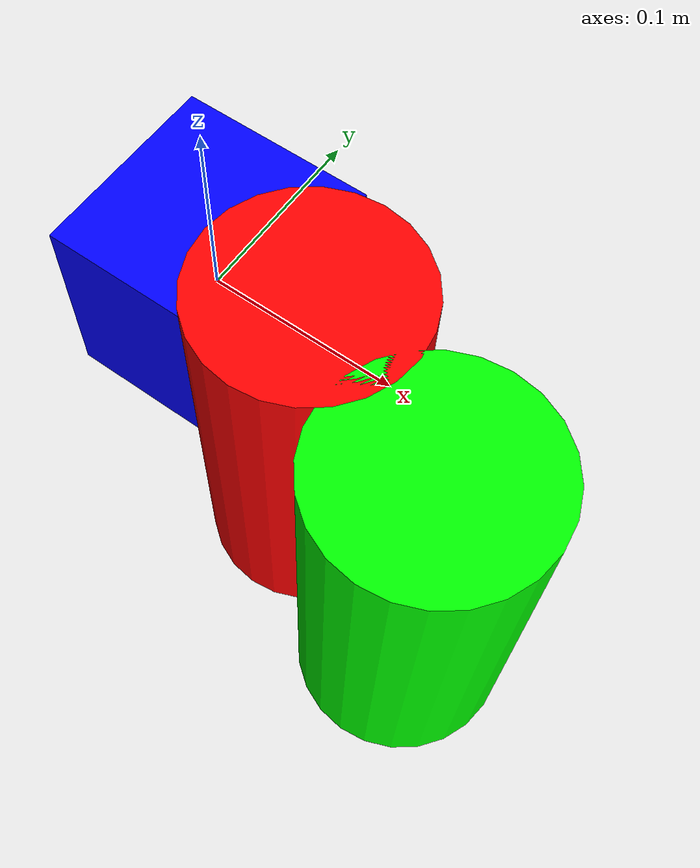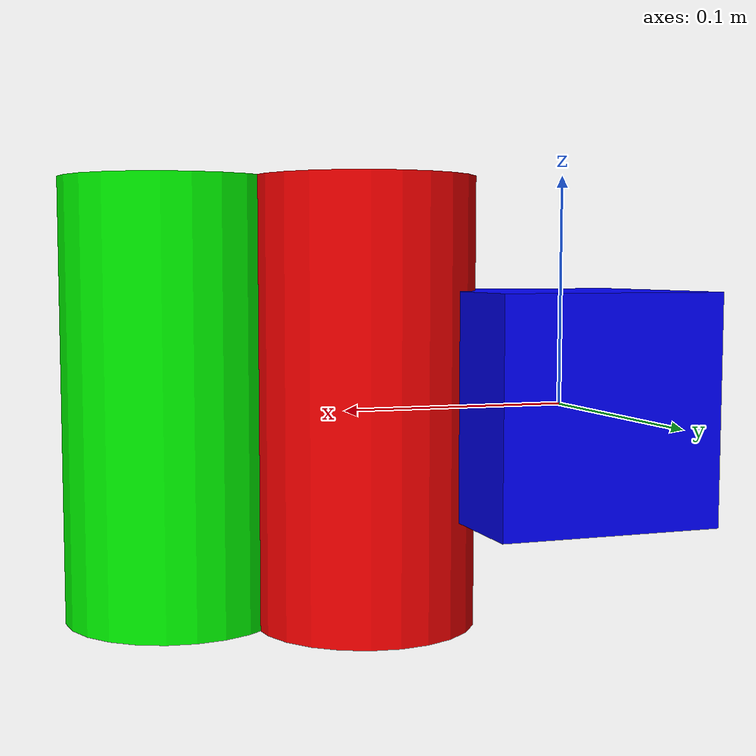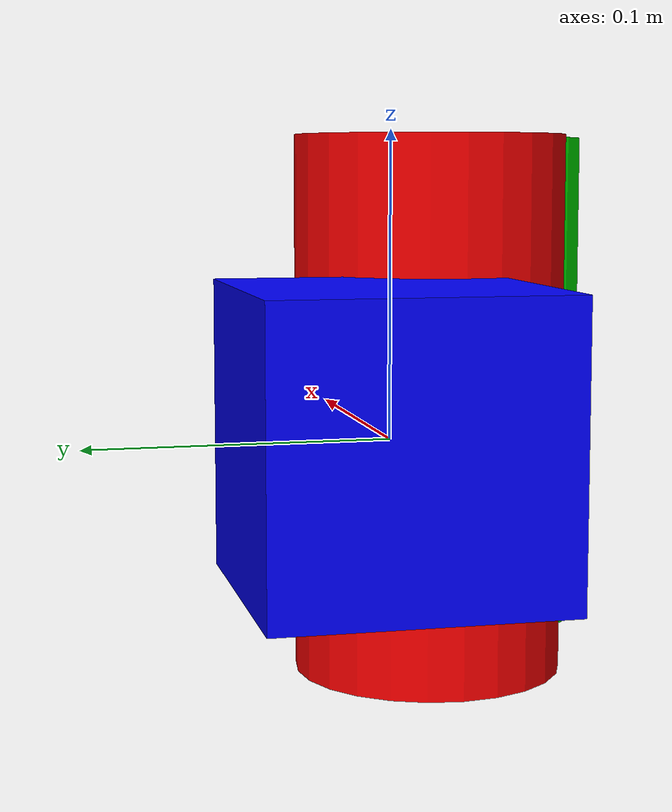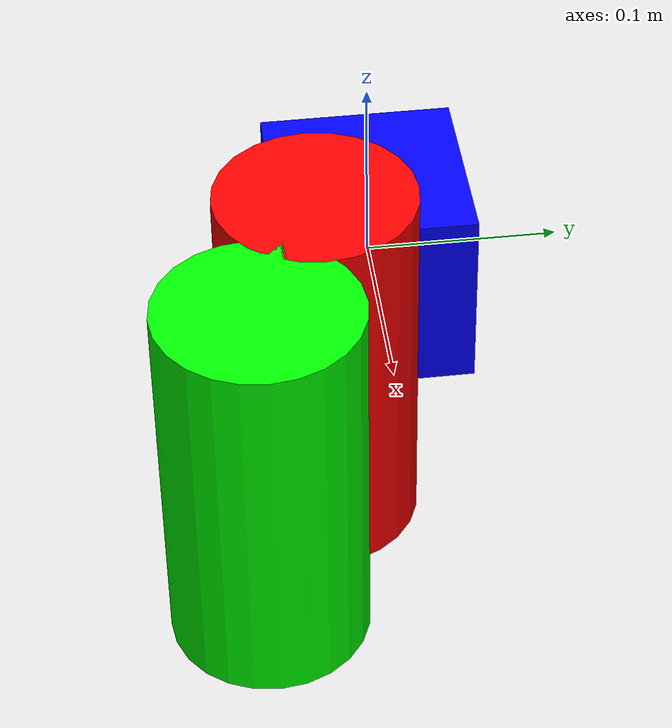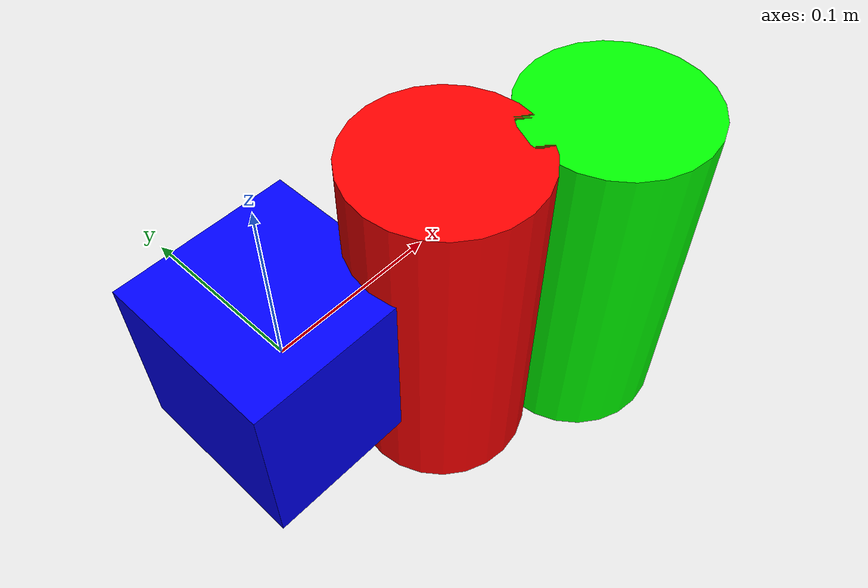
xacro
<?xml version="1.0"?>
<robot xmlns:xacro="http://ros.org/wiki/xacro" name="photo_station_v2">

  <!-- Base link -->
  <link name="base_link">
    <visual>
      <geometry>
        <box size="0.1 0.1 0.1"/>
      </geometry>
      <material name="blue">
        <color rgba="0 0 1 1"/>
      </material>
    </visual>
    <inertial>
      <mass value="1.0"/>
      <inertia ixx="0.01" ixy="0" ixz="0" iyy="0.01" iyz="0" izz="0.01"/>
    </inertial>
  </link>

  <!-- Link 1 -->
  <link name="link1">
    <visual>
      <geometry>
        <cylinder radius="0.05" length="0.2"/>
      </geometry>
      <material name="red">
        <color rgba="1 0 0 1"/>
      </material>
    </visual>
    <inertial>
      <mass value="0.5"/>
      <inertia ixx="0.005" ixy="0" ixz="0" iyy="0.005" iyz="0" izz="0.005"/>
    </inertial>
  </link>

  <!-- Link 2 -->
  <link name="link2">
    <visual>
      <geometry>
        <cylinder radius="0.05" length="0.2"/>
      </geometry>
      <material name="green">
        <color rgba="0 1 0 1"/>
      </material>
    </visual>
    <inertial>
      <mass value="0.5"/>
      <inertia ixx="0.005" ixy="0" ixz="0" iyy="0.005" iyz="0" izz="0.005"/>
    </inertial>
  </link>

  <!-- Joint 1 -->
  <joint name="joint1" type="revolute">
    <parent link="base_link"/>
    <child link="link1"/>
    <origin xyz="0.08 -0.035 0" rpy="0 0 0"/>
    <axis xyz="0 1 0"/>
    <limit lower="-100000" upper="100000" effort="10" velocity="30"/>
  </joint>

  <!-- Joint 2 -->
  <joint name="joint2" type="revolute">
    <parent link="link1"/>
    <child link="link2"/>
    <origin xyz="0.08 -0.035 0" rpy="0 0 0"/>
    <axis xyz="0 1 0"/>
    <limit lower="-100000" upper="100000" effort="10" velocity="30"/>
  </joint>

  <!-- ROS2 Control Hardware Interface -->
  <ros2_control name="photo_station_v2_hardware" type="system">
    <hardware>
      <plugin>actuator_interface/Ros2ControlHw</plugin>
      <param name="config_file">$(find photo_station_v2)/config/photo_station_v2_hw.yaml</param>
    </hardware>

    <joint name="joint1">
      <command_interface name="effort"/>
      <state_interface name="position"/>
      <state_interface name="velocity"/>
      <state_interface name="effort"/>
    </joint>

    <joint name="joint2">
      <command_interface name="effort"/>
      <state_interface name="position"/>
      <state_interface name="velocity"/>
      <state_interface name="effort"/>
    </joint>
  </ros2_control>

</robot>
